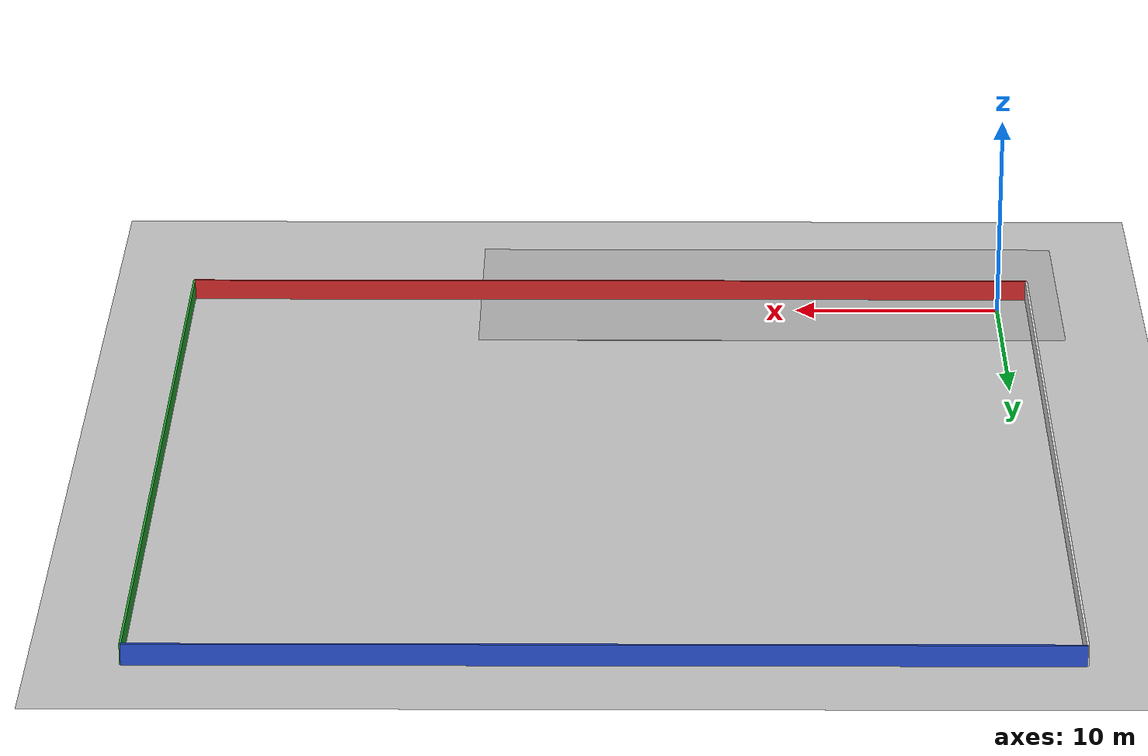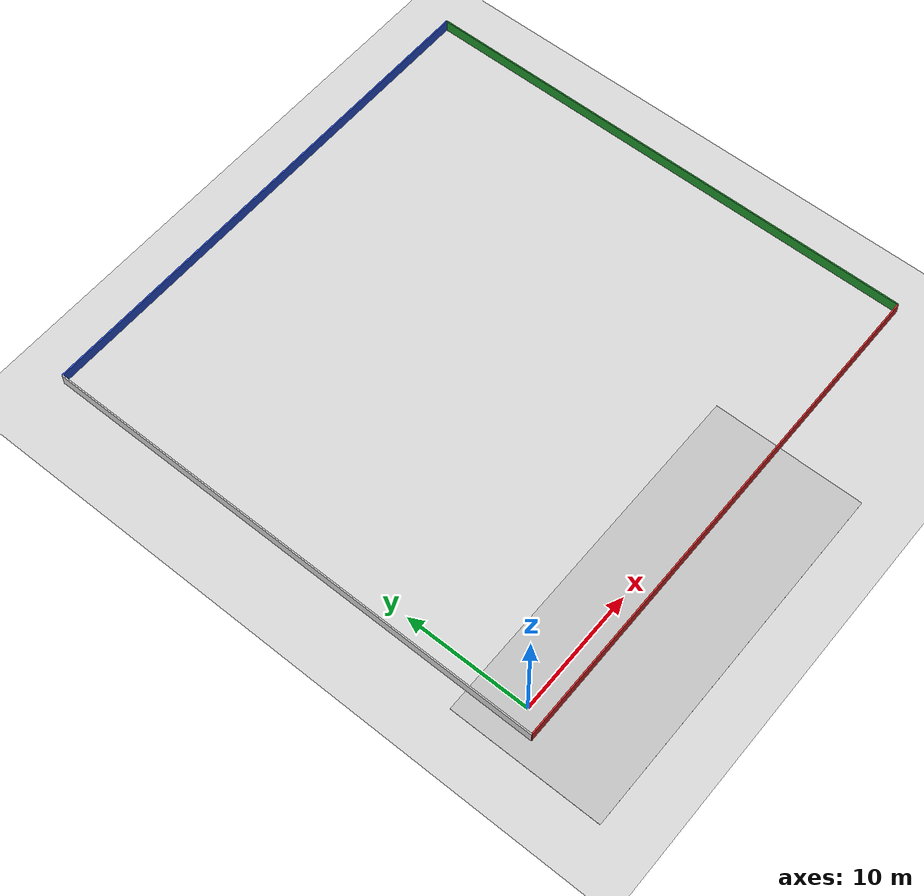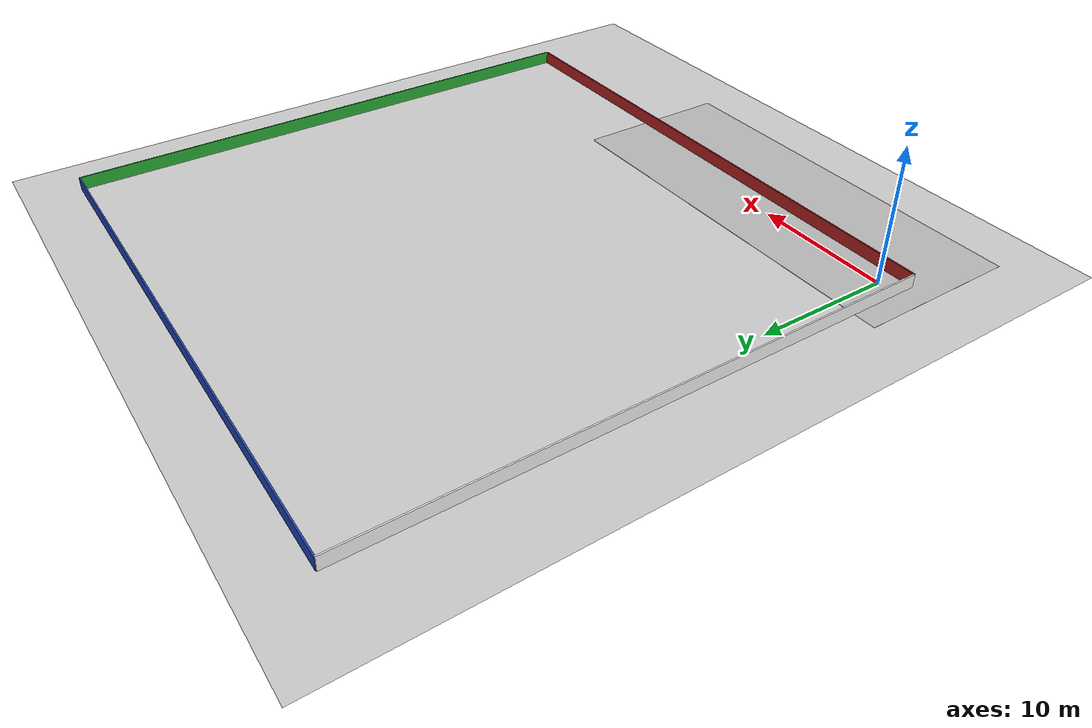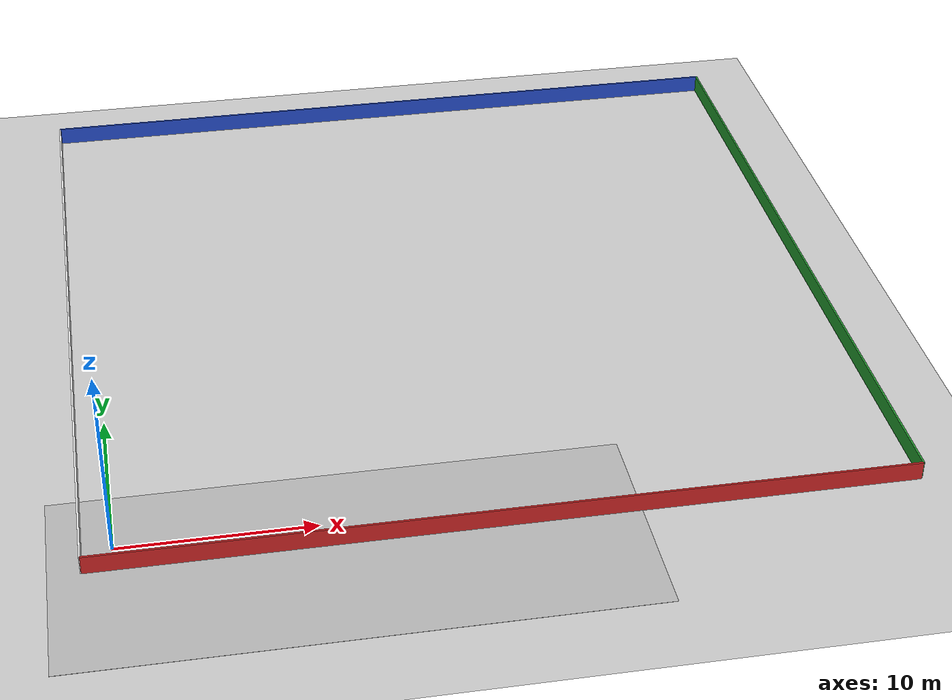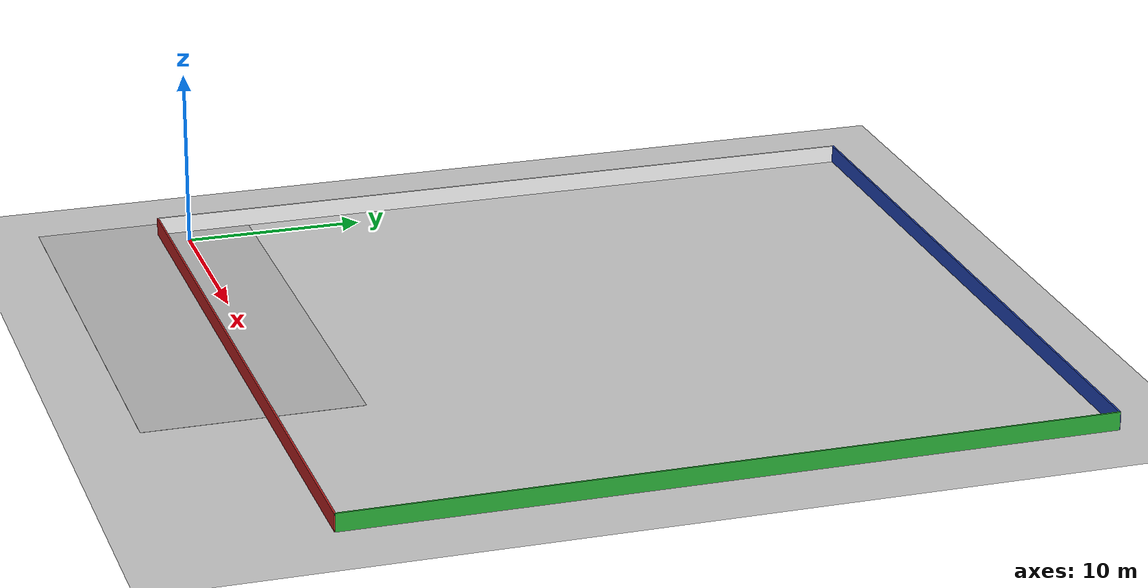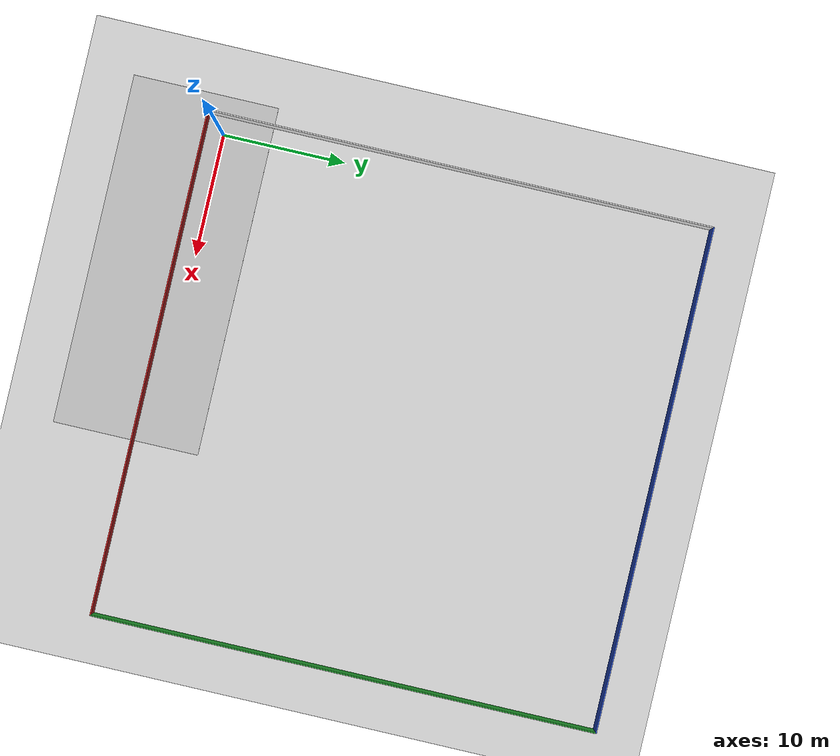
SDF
<sdf version="1.7">
 <world name="default">
  <light name="sun" type="directional">
   <pose>0 0 10 0 -0 0</pose>
   <diffuse>0.8 0.8 0.8 1</diffuse>
   <specular>0.1 0.1 0.1 1</specular>
   <attenuation>
    <range>1000</range>
    <constant>0.9</constant>
    <linear>0.01</linear>
    <quadratic>0.001</quadratic>
   </attenuation>
   <direction>-0.5 0.5 -1</direction>
   <spot><inner_angle>0</inner_angle><outer_angle>0</outer_angle><falloff>0</falloff></spot>
  </light>
  <model name="ground_plane">
   <static>1</static>
   <link name="link">
    <collision name="collision">
     <geometry><plane><normal>0 0 1</normal><size>100 100</size></plane></geometry>
     <surface><friction><ode><mu>100</mu><mu2>50</mu2></ode></friction></surface>
    </collision>
    <visual name="visual">
     <cast_shadows>0</cast_shadows>
     <geometry><plane><normal>0 0 1</normal><size>100 100</size></plane></geometry>
     <material>
      <script><uri>file://media/materials/scripts/gazebo.material</uri><name>Gazebo/Grey</name></script>
     </material>
    </visual>
   </link>
  </model>
  <gravity>0 0 -9.8</gravity>
  <magnetic_field>6e-06 2.3e-05 -4.2e-05</magnetic_field>
  <atmosphere type="adiabatic"/>
  <physics name="default_physics" default="0" type="ode">
   <max_step_size>0.001</max_step_size>
   <real_time_factor>1</real_time_factor>
   <real_time_update_rate>1000</real_time_update_rate>
  </physics>
  <scene><ambient>0.4 0.4 0.4 1</ambient><background>0.7 0.7 0.7 1</background><shadows>1</shadows></scene>
  <spherical_coordinates>
   <surface_model>EARTH_WGS84</surface_model>
   <latitude_deg>0</latitude_deg>
   <longitude_deg>0</longitude_deg>
   <elevation>0</elevation>
   <heading_deg>0</heading_deg>
  </spherical_coordinates>
  <audio><device>default</device></audio>
  <model name="my_ground_plane_0">
   <static>1</static>
   <link name="link">
    <collision name="collision">
     <geometry><plane><normal>0 0 1</normal><size>28.8 12</size></plane></geometry>
     <surface><friction><ode><mu>100</mu><mu2>50</mu2></ode></friction></surface>
    </collision>
    <visual name="visual">
     <cast_shadows>0</cast_shadows>
     <geometry><plane><normal>0 0 1</normal><size>28.8 12</size></plane></geometry>
     <material>
      <script>
       <uri>model://my_ground_plane/materials/scripts</uri>
       <uri>model://my_ground_plane/materials/textures/</uri>
       <name>MyGroundPlane/Image</name>
      </script>
     </material>
    </visual>
   </link>
   <pose>11.2785 -2.18868 0 0 -0 0</pose>
  </model>
  <model name="north_wall">
   <static>true</static>
   <pose>19.25 40 0.5 0 0 0</pose>
   <link name="link">
    <collision name="collision"><geometry><box><size>41.5 0.1 1</size></box></geometry></collision>
    <visual name="visual">
     <geometry><box><size>41.5 0.1 1</size></box></geometry>
     <material>
      <script><uri>file://media/materials/scripts/gazebo.material</uri><name>Gazebo/Blue</name></script>
     </material>
    </visual>
   </link>
  </model>
  <model name="south_wall">
   <static>true</static>
   <pose>19.25 -1.5 0.5 0 0 0</pose>
   <link name="link">
    <collision name="collision"><geometry><box><size>41.5 0.1 1</size></box></geometry></collision>
    <visual name="visual">
     <geometry><box><size>41.5 0.1 1</size></box></geometry>
     <material>
      <script><uri>file://media/materials/scripts/gazebo.material</uri><name>Gazebo/Red</name></script>
     </material>
    </visual>
   </link>
  </model>
  <model name="east_wall">
   <static>true</static>
   <pose>40 19.25 0.5 0 0 1.570796</pose>
   <link name="link">
    <collision name="collision"><geometry><box><size>41.5 0.1 1</size></box></geometry></collision>
    <visual name="visual">
     <geometry><box><size>41.5 0.1 1</size></box></geometry>
     <material>
      <script><uri>file://media/materials/scripts/gazebo.material</uri><name>Gazebo/Green</name></script>
     </material>
    </visual>
   </link>
  </model>
  <model name="west_wall">
   <static>true</static>
   <pose>-1.5 19.25 0.5 0 0 1.570796</pose>
   <link name="link">
    <collision name="collision"><geometry><box><size>41.5 0.1 1</size></box></geometry></collision>
    <visual name="visual">
     <geometry><box><size>41.5 0.1 1</size></box></geometry>
     <material>
      <script><uri>file://media/materials/scripts/gazebo.material</uri><name>Gazebo/White</name></script>
     </material>
    </visual>
   </link>
  </model>
  <light name="user_directional_light_0" type="directional">
   <pose>11.0345 -13.0266 1 0 -0 0</pose>
   <diffuse>0.5 0.5 0.5 1</diffuse>
   <specular>0.1 0.1 0.1 1</specular>
   <direction>0.1 0.1 -0.9</direction>
   <attenuation>
    <range>20</range>
    <constant>0.5</constant>
    <linear>0.01</linear>
    <quadratic>0.001</quadratic>
   </attenuation>
  </light>
  <light name="user_directional_light_1" type="directional">
   <pose>11.0023 9.1288 1 0 -0 0</pose>
   <diffuse>0.5 0.5 0.5 1</diffuse>
   <specular>0.1 0.1 0.1 1</specular>
   <direction>0.1 0.1 -0.9</direction>
   <attenuation>
    <range>20</range>
    <constant>0.5</constant>
    <linear>0.01</linear>
    <quadratic>0.001</quadratic>
   </attenuation>
  </light>
 </world>
</sdf>
